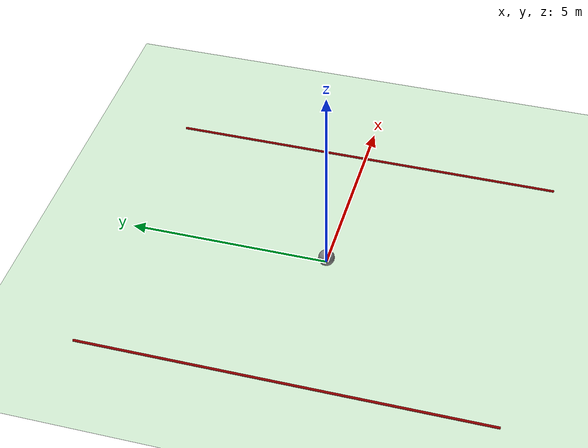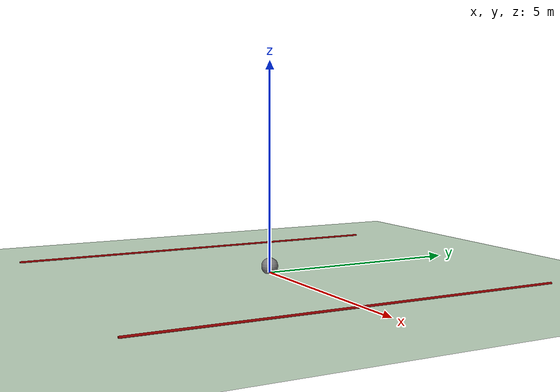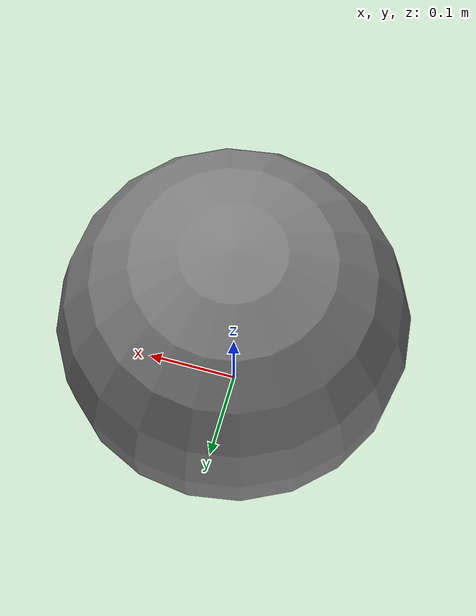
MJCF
<mujoco model="mutiagent_world">
  <compiler angle="degree" coordinate="local" inertiafromgeom="true"/>
  <option integrator="RK4" timestep="0.003" solver="PGS" iterations="1000"/>
  <default>
    <joint armature="1" damping="1" limited="true"/>
  </default>
  <asset>
    <texture builtin="gradient" height="100" rgb1="1 1 1" rgb2="0 0 0" type="skybox" width="100"/>
    <texture builtin="flat" height="1278" mark="cross" markrgb="1 1 1" name="texgeom" random="0.01" rgb1="0.8 0.6 0.4" rgb2="0.8 0.6 0.4" type="cube" width="127"/>
    <texture builtin="checker" height="100" name="texplane" rgb1="0.1 0.5 0.1" rgb2="0.1 0.4 0.1" type="2d" width="100"/>
    <material name="MatPlane" reflectance="0.5" shininess="1" specular="1" texrepeat="60 60" texture="texplane"/>
    <material name="geom" texture="texgeom" texuniform="true"/>
  </asset>
  <worldbody>
    <light cutoff="100" diffuse="1 1 1" dir="-0 0 -1.3" directional="true" exponent="1" pos="0 0 1.3" specular=".1 .1 .1"/>
    <geom contype="1" conaffinity="1" friction="1 .1 .1" condim="3" material="MatPlane" name="floor" pos="0 0 0" rgba="0.8 0.9 0.8 1" size="20 20 0.125" type="plane"/>
    <geom fromto="4 -5 0  4 +5 0" name="rightgoal" rgba="0.6 0.0 0.0 1" size=".03" type="cylinder"/>
    <geom fromto="-4 -5 0  -4 +5 0" name="leftgoal" rgba="0.6 0.0 0.0 1" size=".03" type="cylinder"/>
    <body euler="0 0 0" name="ball" pos="0 0 .15">
        <joint armature="0" damping="0.001" limited="false" name="ball" pos="0 0 0" stiffness="0" type="free" />
        <geom mass="0.15" name="ball" size="0.2" type="sphere" />
    </body>
  </worldbody>
</mujoco>
